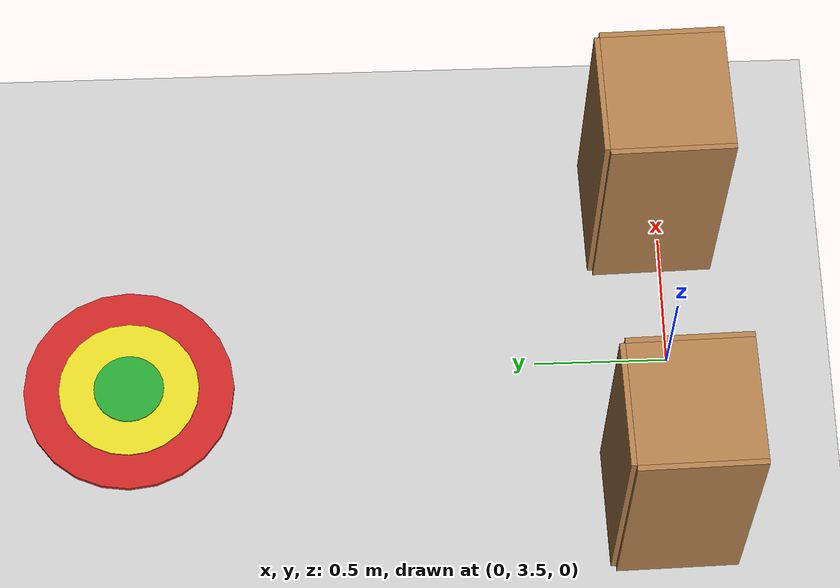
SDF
<sdf version="1.6">
 <world name="default">
  <light name="sun" type="directional">
   <pose>0 0 10 0 -0 0</pose>
   <diffuse>0.8 0.8 0.8 1</diffuse>
   <specular>0.1 0.1 0.1 1</specular>
   <attenuation>
    <range>1000</range>
    <constant>0.9</constant>
    <linear>0.01</linear>
    <quadratic>0.001</quadratic>
   </attenuation>
   <direction>-0.5 0.5 -1</direction>
  </light>
  <model name="ground_plane">
   <static>1</static>
   <link name="link">
    <collision name="collision">
     <geometry><plane><normal>0 0 1</normal><size>100 100</size></plane></geometry>
     <surface><friction><ode><mu>100</mu><mu2>50</mu2></ode></friction></surface>
    </collision>
    <visual name="visual">
     <cast_shadows>0</cast_shadows>
     <geometry><plane><normal>0 0 1</normal><size>100 100</size></plane></geometry>
     <material>
      <script><uri>file://media/materials/scripts/gazebo.material</uri><name>Gazebo/Grey</name></script>
     </material>
    </visual>
   </link>
  </model>
  <gravity>0 0 -9.8</gravity>
  <magnetic_field>6e-06 2.3e-05 -4.2e-05</magnetic_field>
  <atmosphere type="adiabatic"/>
  <physics name="default_physics" default="0" type="ode">
   <max_step_size>0.001</max_step_size>
   <real_time_factor>1</real_time_factor>
   <real_time_update_rate>1000</real_time_update_rate>
  </physics>
  <scene><ambient>0.4 0.4 0.4 1</ambient><background>0.7 0.7 0.7 1</background><shadows>1</shadows></scene>
  <spherical_coordinates>
   <surface_model>EARTH_WGS84</surface_model>
   <latitude_deg>0</latitude_deg>
   <longitude_deg>0</longitude_deg>
   <elevation>0</elevation>
   <heading_deg>0</heading_deg>
  </spherical_coordinates>
  <model name="cabinet">
   <static>1</static>
   <link name="cabinet_bottom_plate">
    <inertial>
     <pose>0 0 -1 0 -0 0</pose>
     <inertia><ixx>2.05</ixx><ixy>0</ixy><ixz>0</ixz><iyy>2.05</iyy><iyz>0</iyz><izz>2.05</izz></inertia>
     <mass>25</mass>
    </inertial>
    <collision name="cabinet_bottom_plate_geom">
     <pose>0 0 0.01 0 -0 0</pose>
     <geometry><box><size>0.45 0.45 0.02</size></box></geometry>
    </collision>
    <visual name="cabinet_bottom_plate_geom_visual">
     <pose>0 0 0.01 0 -0 0</pose>
     <geometry><box><size>0.45 0.45 0.02</size></box></geometry>
     <material>
      <script><uri>file://media/materials/scripts/gazebo.material</uri><name>Gazebo/Wood</name></script>
     </material>
    </visual>
    <collision name="cabinet_bottom_plate_geom_cabinet_back_plate">
     <pose>0.235 0 0.51 0 -0 0</pose>
     <geometry><box><size>0.02 0.45 1.02</size></box></geometry>
    </collision>
    <visual name="cabinet_bottom_plate_geom_cabinet_back_plate_visual">
     <pose>0.235 0 0.51 0 -0 0</pose>
     <geometry><box><size>0.02 0.45 1.02</size></box></geometry>
     <material>
      <script><uri>file://media/materials/scripts/gazebo.material</uri><name>Gazebo/Wood</name></script>
     </material>
    </visual>
    <collision name="cabinet_bottom_plate_geom_cabinet_left_plate">
     <pose>0 0.235 0.51 0 -0 0</pose>
     <geometry><box><size>0.45 0.02 1.02</size></box></geometry>
    </collision>
    <visual name="cabinet_bottom_plate_geom_cabinet_left_plate_visual">
     <pose>0 0.235 0.51 0 -0 0</pose>
     <geometry><box><size>0.45 0.02 1.02</size></box></geometry>
     <material>
      <script><uri>file://media/materials/scripts/gazebo.material</uri><name>Gazebo/Wood</name></script>
     </material>
    </visual>
    <collision name="cabinet_bottom_plate_geom_cabinet_middle_plate">
     <pose>0 0 0.51 0 -0 0</pose>
     <geometry><box><size>0.45 0.45 0.02</size></box></geometry>
    </collision>
    <visual name="cabinet_bottom_plate_geom_cabinet_middle_plate_visual">
     <pose>0 0 0.51 0 -0 0</pose>
     <geometry><box><size>0.45 0.45 0.02</size></box></geometry>
     <material>
      <script><uri>file://media/materials/scripts/gazebo.material</uri><name>Gazebo/Wood</name></script>
     </material>
    </visual>
    <collision name="cabinet_bottom_plate_geom_cabinet_right_plate">
     <pose>0 -0.235 0.51 0 -0 0</pose>
     <geometry><box><size>0.45 0.02 1.02</size></box></geometry>
    </collision>
    <visual name="cabinet_bottom_plate_geom_cabinet_right_plate_visual">
     <pose>0 -0.235 0.51 0 -0 0</pose>
     <geometry><box><size>0.45 0.02 1.02</size></box></geometry>
     <material>
      <script><uri>file://media/materials/scripts/gazebo.material</uri><name>Gazebo/Wood</name></script>
     </material>
    </visual>
    <collision name="cabinet_bottom_plate_geom_cabinet_top_plate">
     <pose>0 0 1.01 0 -0 0</pose>
     <geometry><box><size>0.45 0.45 0.02</size></box></geometry>
    </collision>
    <visual name="cabinet_bottom_plate_geom_cabinet_top_plate_visual">
     <pose>0 0 1.01 0 -0 0</pose>
     <geometry><box><size>0.45 0.45 0.02</size></box></geometry>
     <material>
      <script><uri>file://media/materials/scripts/gazebo.material</uri><name>Gazebo/Wood</name></script>
     </material>
    </visual>
   </link>
   <pose>-0.580768 3.52491 0 0 -0 1.59408</pose>
  </model>
  <model name="cabinet_clone">
   <static>1</static>
   <link name="cabinet_bottom_plate">
    <inertial>
     <pose>0 0 -1 0 -0 0</pose>
     <inertia><ixx>2.05</ixx><ixy>0</ixy><ixz>0</ixz><iyy>2.05</iyy><iyz>0</iyz><izz>2.05</izz></inertia>
     <mass>25</mass>
    </inertial>
    <collision name="cabinet_bottom_plate_geom">
     <pose>0 0 0.01 0 -0 0</pose>
     <geometry><box><size>0.45 0.45 0.02</size></box></geometry>
    </collision>
    <visual name="cabinet_bottom_plate_geom_visual">
     <pose>0 0 0.01 0 -0 0</pose>
     <geometry><box><size>0.45 0.45 0.02</size></box></geometry>
     <material>
      <script><uri>file://media/materials/scripts/gazebo.material</uri><name>Gazebo/Wood</name></script>
     </material>
    </visual>
    <collision name="cabinet_bottom_plate_geom_cabinet_back_plate">
     <pose>0.235 0 0.51 0 -0 0</pose>
     <geometry><box><size>0.02 0.45 1.02</size></box></geometry>
    </collision>
    <visual name="cabinet_bottom_plate_geom_cabinet_back_plate_visual">
     <pose>0.235 0 0.51 0 -0 0</pose>
     <geometry><box><size>0.02 0.45 1.02</size></box></geometry>
     <material>
      <script><uri>file://media/materials/scripts/gazebo.material</uri><name>Gazebo/Wood</name></script>
     </material>
    </visual>
    <collision name="cabinet_bottom_plate_geom_cabinet_left_plate">
     <pose>0 0.235 0.51 0 -0 0</pose>
     <geometry><box><size>0.45 0.02 1.02</size></box></geometry>
    </collision>
    <visual name="cabinet_bottom_plate_geom_cabinet_left_plate_visual">
     <pose>0 0.235 0.51 0 -0 0</pose>
     <geometry><box><size>0.45 0.02 1.02</size></box></geometry>
     <material>
      <script><uri>file://media/materials/scripts/gazebo.material</uri><name>Gazebo/Wood</name></script>
     </material>
    </visual>
    <collision name="cabinet_bottom_plate_geom_cabinet_middle_plate">
     <pose>0 0 0.51 0 -0 0</pose>
     <geometry><box><size>0.45 0.45 0.02</size></box></geometry>
    </collision>
    <visual name="cabinet_bottom_plate_geom_cabinet_middle_plate_visual">
     <pose>0 0 0.51 0 -0 0</pose>
     <geometry><box><size>0.45 0.45 0.02</size></box></geometry>
     <material>
      <script><uri>file://media/materials/scripts/gazebo.material</uri><name>Gazebo/Wood</name></script>
     </material>
    </visual>
    <collision name="cabinet_bottom_plate_geom_cabinet_right_plate">
     <pose>0 -0.235 0.51 0 -0 0</pose>
     <geometry><box><size>0.45 0.02 1.02</size></box></geometry>
    </collision>
    <visual name="cabinet_bottom_plate_geom_cabinet_right_plate_visual">
     <pose>0 -0.235 0.51 0 -0 0</pose>
     <geometry><box><size>0.45 0.02 1.02</size></box></geometry>
     <material>
      <script><uri>file://media/materials/scripts/gazebo.material</uri><name>Gazebo/Wood</name></script>
     </material>
    </visual>
    <collision name="cabinet_bottom_plate_geom_cabinet_top_plate">
     <pose>0 0 1.01 0 -0 0</pose>
     <geometry><box><size>0.45 0.45 0.02</size></box></geometry>
    </collision>
    <visual name="cabinet_bottom_plate_geom_cabinet_top_plate_visual">
     <pose>0 0 1.01 0 -0 0</pose>
     <geometry><box><size>0.45 0.45 0.02</size></box></geometry>
     <material>
      <script><uri>file://media/materials/scripts/gazebo.material</uri><name>Gazebo/Wood</name></script>
     </material>
    </visual>
   </link>
   <pose>0.614621 3.53864 0 0 -0 1.59408</pose>
  </model>
  <model name="Target">
   <static>1</static>
   <link name="green">
    <visual name="visual">
     <geometry><cylinder><radius>0.13213</radius><length>0.05</length></cylinder></geometry>
     <material>
      <script><uri>file://media/materials/scripts/gazebo.material</uri><name>Gazebo/Green</name></script>
      <ambient>1 1 1 1</ambient>
     </material>
     <cast_shadows>0</cast_shadows>
    </visual>
   </link>
   <link name="yellow">
    <visual name="visual">
     <geometry><cylinder><radius>0.26426</radius><length>0.04</length></cylinder></geometry>
     <material>
      <script><uri>file://media/materials/scripts/gazebo.material</uri><name>Gazebo/Yellow</name></script>
      <ambient>1 1 1 1</ambient>
     </material>
     <cast_shadows>0</cast_shadows>
    </visual>
   </link>
   <link name="red">
    <visual name="visual">
     <geometry><cylinder><radius>0.39639</radius><length>0.03</length></cylinder></geometry>
     <material>
      <script><uri>file://media/materials/scripts/gazebo.material</uri><name>Gazebo/Red</name></script>
      <ambient>1 1 1 1</ambient>
     </material>
     <cast_shadows>0</cast_shadows>
    </visual>
   </link>
   <pose>-0.058255 5.53156 0 0 -0 0</pose>
  </model>
 </world>
</sdf>
